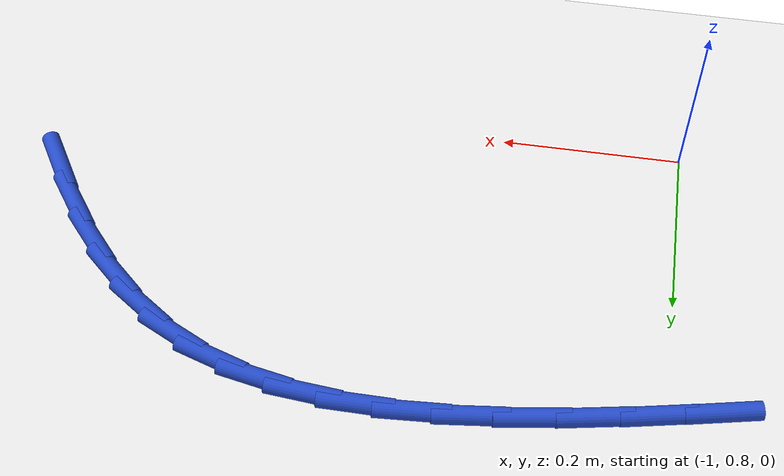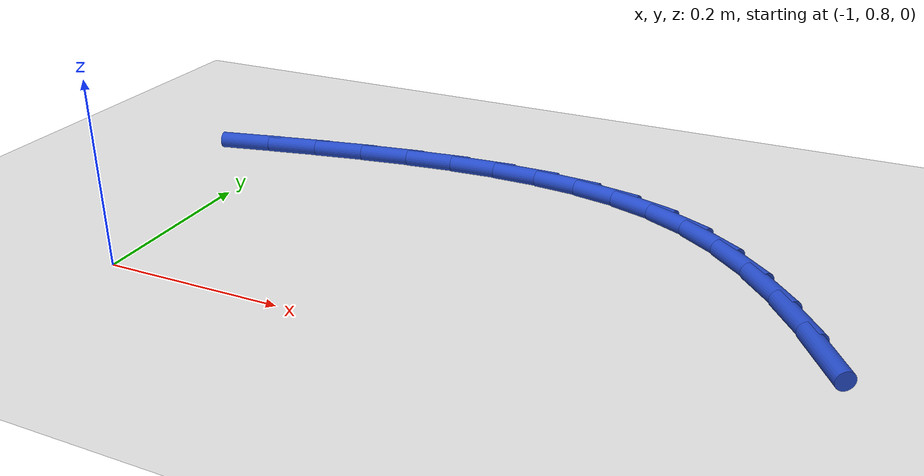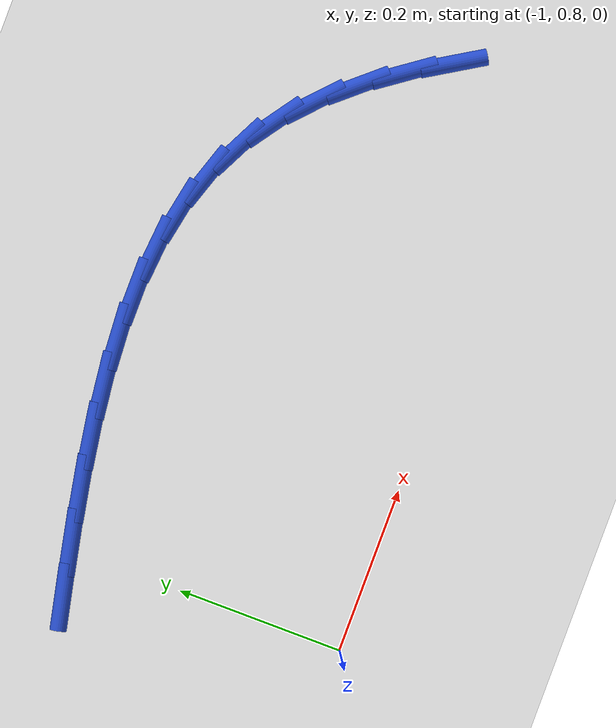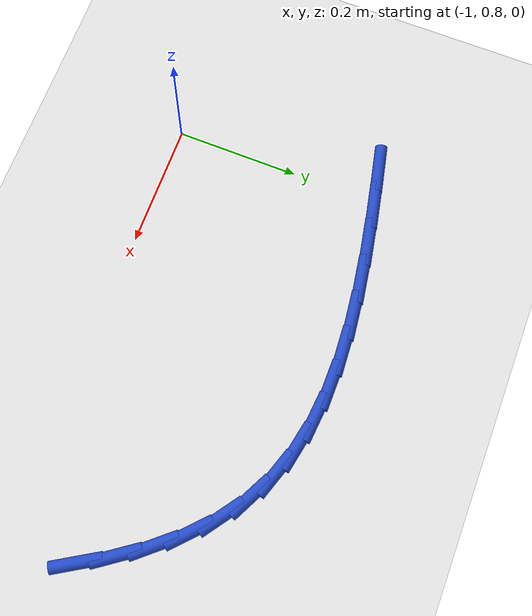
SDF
<sdf version="1.6">
 <world name="default">
  <model name="ground_plane">
   <static>1</static>
   <link name="link">
    <collision name="collision">
     <geometry><plane><normal>0 0 1</normal><size>100 100</size></plane></geometry>
     <surface><friction><ode><mu>100</mu><mu2>50</mu2></ode></friction></surface>
    </collision>
    <visual name="visual">
     <cast_shadows>0</cast_shadows>
     <geometry><plane><normal>0 0 1</normal><size>100 100</size></plane></geometry>
     <material>
      <script><uri>file://media/materials/scripts/gazebo.material</uri><name>Gazebo/WhiteGlow</name></script>
     </material>
    </visual>
   </link>
  </model>
  <model name="line">
   <link name="link_16">
    <pose>-0.3072991913968514 0.9154907741735391 0.01 0 1.57 -1.0229902118308762</pose>
    <collision name="collision">
     <geometry><cylinder><radius>0.01</radius><length>0.08</length></cylinder></geometry>
    </collision>
    <visual name="visual">
     <material>
      <script><name>Gazebo/Blue</name><uri>file://media/materials/scripts/gazebo.material</uri></script>
     </material>
     <geometry><cylinder><radius>0.01</radius><length>0.08</length></cylinder></geometry>
    </visual>
   </link>
   <link name="link_17">
    <pose>-0.3378442735345422 0.9655572349122736 0.01 0 1.57 -0.9488276878687275</pose>
    <collision name="collision">
     <geometry><cylinder><radius>0.01</radius><length>0.08</length></cylinder></geometry>
    </collision>
    <visual name="visual">
     <material>
      <script><name>Gazebo/Blue</name><uri>file://media/materials/scripts/gazebo.material</uri></script>
     </material>
     <geometry><cylinder><radius>0.01</radius><length>0.08</length></cylinder></geometry>
    </visual>
   </link>
   <link name="link_18">
    <pose>-0.37079288636252655 1.0115180299115458 0.01 0 1.57 -0.857346062946791</pose>
    <collision name="collision">
     <geometry><cylinder><radius>0.01</radius><length>0.08</length></cylinder></geometry>
    </collision>
    <visual name="visual">
     <material>
      <script><name>Gazebo/Blue</name><uri>file://media/materials/scripts/gazebo.material</uri></script>
     </material>
     <geometry><cylinder><radius>0.01</radius><length>0.08</length></cylinder></geometry>
    </visual>
   </link>
   <link name="link_19">
    <pose>-0.40643351791216875 1.0526950893836795 0.01 0 1.57 -0.7463270538368787</pose>
    <collision name="collision">
     <geometry><cylinder><radius>0.01</radius><length>0.08</length></cylinder></geometry>
    </collision>
    <visual name="visual">
     <material>
      <script><name>Gazebo/Blue</name><uri>file://media/materials/scripts/gazebo.material</uri></script>
     </material>
     <geometry><cylinder><radius>0.01</radius><length>0.08</length></cylinder></geometry>
    </visual>
   </link>
   <link name="link_20">
    <pose>-0.4450546562148332 1.0884103435409977 0.01 0 1.57 -0.6147565259077008</pose>
    <collision name="collision">
     <geometry><cylinder><radius>0.01</radius><length>0.08</length></cylinder></geometry>
    </collision>
    <visual name="visual">
     <material>
      <script><name>Gazebo/Blue</name><uri>file://media/materials/scripts/gazebo.material</uri></script>
     </material>
     <geometry><cylinder><radius>0.01</radius><length>0.08</length></cylinder></geometry>
    </visual>
   </link>
   <link name="link_21">
    <pose>-0.48694478930188434 1.1179857225958234 0.01 0 1.57 -0.46545245642863914</pose>
    <collision name="collision">
     <geometry><cylinder><radius>0.01</radius><length>0.08</length></cylinder></geometry>
    </collision>
    <visual name="visual">
     <material>
      <script><name>Gazebo/Blue</name><uri>file://media/materials/scripts/gazebo.material</uri></script>
     </material>
     <geometry><cylinder><radius>0.01</radius><length>0.08</length></cylinder></geometry>
    </visual>
   </link>
   <link name="link_22">
    <pose>-0.5323656668279474 1.140798726219651 0.01 0 1.57 -0.3196633346228773</pose>
    <collision name="collision">
     <geometry><cylinder><radius>0.01</radius><length>0.08</length></cylinder></geometry>
    </collision>
    <visual name="visual">
     <material>
      <script><name>Gazebo/Blue</name><uri>file://media/materials/scripts/gazebo.material</uri></script>
     </material>
     <geometry><cylinder><radius>0.01</radius><length>0.08</length></cylinder></geometry>
    </visual>
   </link>
   <link name="link_23">
    <pose>-0.5812211408501887 1.1569706604908794 0.01 0 1.57 -0.19360275588897863</pose>
    <collision name="collision">
     <geometry><cylinder><radius>0.01</radius><length>0.08</length></cylinder></geometry>
    </collision>
    <visual name="visual">
     <material>
      <script><name>Gazebo/Blue</name><uri>file://media/materials/scripts/gazebo.material</uri></script>
     </material>
     <geometry><cylinder><radius>0.01</radius><length>0.08</length></cylinder></geometry>
    </visual>
   </link>
   <link name="link_24">
    <pose>-0.6331596518387848 1.1671536447041777 0.01 0 1.57 -0.08862926515844474</pose>
    <collision name="collision">
     <geometry><cylinder><radius>0.01</radius><length>0.08</length></cylinder></geometry>
    </collision>
    <visual name="visual">
     <material>
      <script><name>Gazebo/Blue</name><uri>file://media/materials/scripts/gazebo.material</uri></script>
     </material>
     <geometry><cylinder><radius>0.01</radius><length>0.08</length></cylinder></geometry>
    </visual>
   </link>
   <link name="link_25">
    <pose>-0.6878241332300615 1.1720112432354053 0.01 0 1.57 -0.0034326641363673226</pose>
    <collision name="collision">
     <geometry><cylinder><radius>0.01</radius><length>0.08</length></cylinder></geometry>
    </collision>
    <visual name="visual">
     <material>
      <script><name>Gazebo/Blue</name><uri>file://media/materials/scripts/gazebo.material</uri></script>
     </material>
     <geometry><cylinder><radius>0.01</radius><length>0.08</length></cylinder></geometry>
    </visual>
   </link>
   <link name="link_26">
    <pose>-0.7448575184603449 1.1722070204604211 0.01 0 1.57 0.06431064065078619</pose>
    <collision name="collision">
     <geometry><cylinder><radius>0.01</radius><length>0.08</length></cylinder></geometry>
    </collision>
    <visual name="visual">
     <material>
      <script><name>Gazebo/Blue</name><uri>file://media/materials/scripts/gazebo.material</uri></script>
     </material>
     <geometry><cylinder><radius>0.01</radius><length>0.08</length></cylinder></geometry>
    </visual>
   </link>
   <link name="link_27">
    <pose>-0.8039027409659609 1.1684045407550836 0.01 0 1.57 0.11704369037663527</pose>
    <collision name="collision">
     <geometry><cylinder><radius>0.01</radius><length>0.08</length></cylinder></geometry>
    </collision>
    <visual name="visual">
     <material>
      <script><name>Gazebo/Blue</name><uri>file://media/materials/scripts/gazebo.material</uri></script>
     </material>
     <geometry><cylinder><radius>0.01</radius><length>0.08</length></cylinder></geometry>
    </visual>
   </link>
   <link name="link_28">
    <pose>-0.8646027341832363 1.1612673684952521 0.01 0 1.57 0.15690386631124478</pose>
    <collision name="collision">
     <geometry><cylinder><radius>0.01</radius><length>0.08</length></cylinder></geometry>
    </collision>
    <visual name="visual">
     <material>
      <script><name>Gazebo/Blue</name><uri>file://media/materials/scripts/gazebo.material</uri></script>
     </material>
     <geometry><cylinder><radius>0.01</radius><length>0.08</length></cylinder></geometry>
    </visual>
   </link>
   <link name="link_29">
    <pose>-0.9266004315484966 1.151459068056786 0.01 0 1.57 0.1855770453939846</pose>
    <collision name="collision">
     <geometry><cylinder><radius>0.01</radius><length>0.08</length></cylinder></geometry>
    </collision>
    <visual name="visual">
     <material>
      <script><name>Gazebo/Blue</name><uri>file://media/materials/scripts/gazebo.material</uri></script>
     </material>
     <geometry><cylinder><radius>0.01</radius><length>0.08</length></cylinder></geometry>
    </visual>
   </link>
   <link name="link_30">
    <pose>-0.9895387664980677 1.139643203815544 0.01 0 1.57 0.20428064785563188</pose>
    <collision name="collision">
     <geometry><cylinder><radius>0.01</radius><length>0.08</length></cylinder></geometry>
    </collision>
    <visual name="visual">
     <material>
      <script><name>Gazebo/Blue</name><uri>file://media/materials/scripts/gazebo.material</uri></script>
     </material>
     <geometry><cylinder><radius>0.01</radius><length>0.08</length></cylinder></geometry>
    </visual>
   </link>
   <link name="link_31">
    <pose>-1.0530606724682763 1.126483340147385 0.01 0 1.57 0.21379028005612455</pose>
    <collision name="collision">
     <geometry><cylinder><radius>0.01</radius><length>0.08</length></cylinder></geometry>
    </collision>
    <visual name="visual">
     <material>
      <script><name>Gazebo/Blue</name><uri>file://media/materials/scripts/gazebo.material</uri></script>
     </material>
     <geometry><cylinder><radius>0.01</radius><length>0.08</length></cylinder></geometry>
    </visual>
   </link>
  </model>
 </world>
</sdf>
